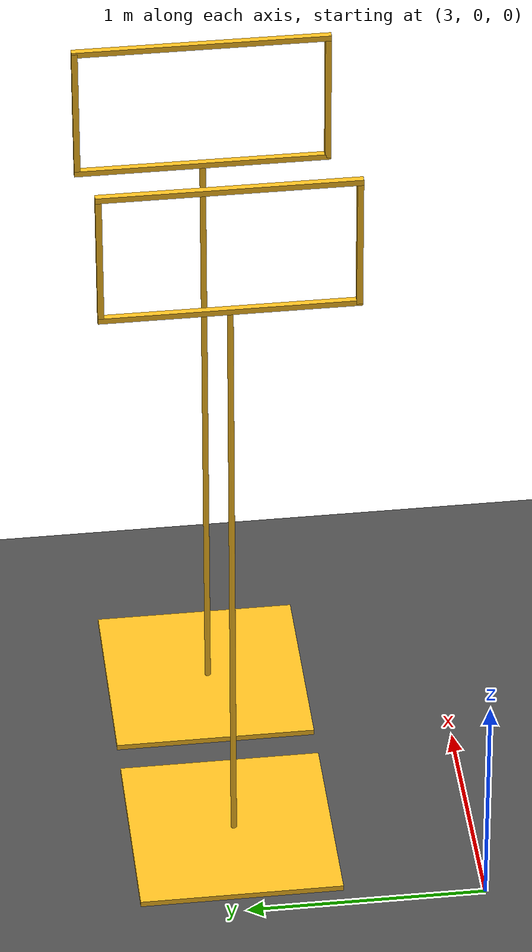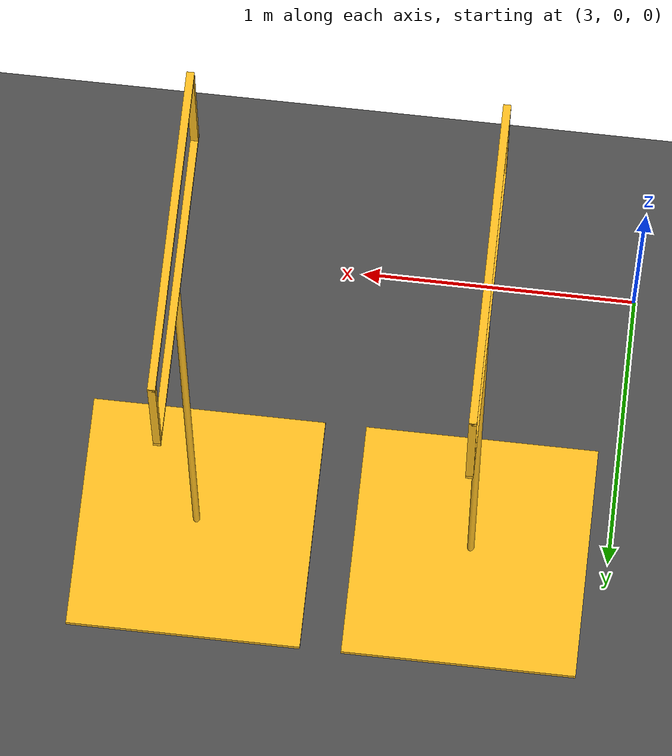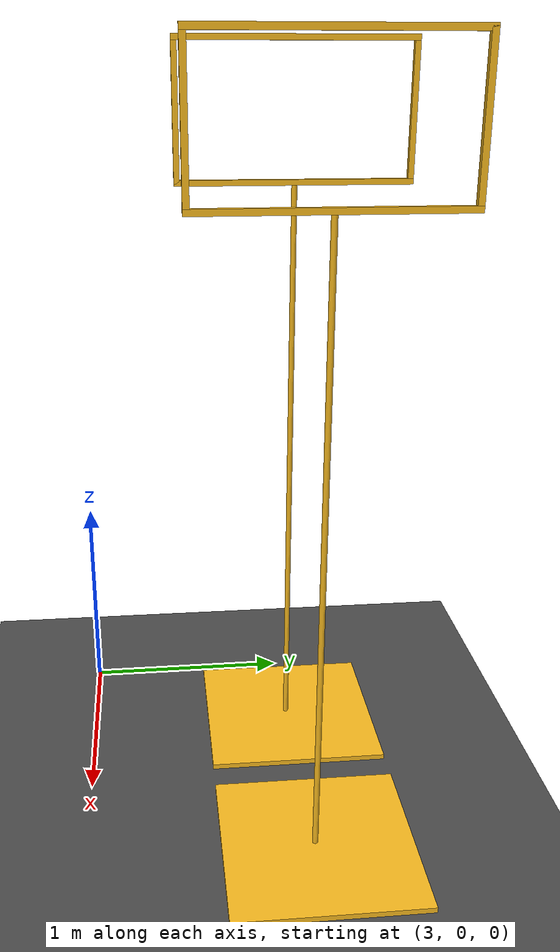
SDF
<sdf version="1.6">
 <world name="default">
  <model name="ground_plane">
   <static>1</static>
   <link name="link">
    <collision name="collision">
     <geometry><plane><normal>0 0 1</normal><size>100 100</size></plane></geometry>
     <surface>
      <contact><collide_bitmask>65535</collide_bitmask></contact>
      <friction><ode><mu>100</mu><mu2>50</mu2></ode></friction>
     </surface>
    </collision>
    <visual name="visual">
     <cast_shadows>0</cast_shadows>
     <geometry><plane><normal>0 0 1</normal><size>100 100</size></plane></geometry>
     <material>
      <script><uri>file://media/materials/scripts/gazebo.material</uri><name>Gazebo/Grey</name></script>
     </material>
    </visual>
   </link>
  </model>
  <model name="asphalt_plane">
   <static>1</static>
   <link name="link">
    <collision name="collision"><geometry><box><size>24.3086 24.3538 0.1</size></box></geometry></collision>
    <visual name="visual">
     <cast_shadows>0</cast_shadows>
     <geometry><box><size>24.3086 24.3538 0.1</size></box></geometry>
     <material>
      <script>
       <uri>model://asphalt_plane/materials/scripts</uri>
       <uri>model://asphalt_plane/materials/textures</uri>
       <name>vrc/asphalt</name>
      </script>
     </material>
    </visual>
   </link>
   <pose>0.83869 0.804741 -0.049 0 -0 0</pose>
  </model>
  <model name="Gate_1">
   <link name="link_2">
    <inertial>
     <mass>1e-08</mass>
     <inertia><ixx>0</ixx><ixy>0</ixy><ixz>0</ixz><iyy>0</iyy><iyz>0</iyz><izz>0</izz></inertia>
     <pose>0 0 0.0125 0 -0 0</pose>
    </inertial>
    <pose>0 -0 0.0125 0 -0 0</pose>
    <visual name="visual">
     <pose>0 0.0125 0 0 -0 0</pose>
     <geometry><box><size>0.85 0.85 0.025</size></box></geometry>
     <material>
      <lighting>1</lighting>
      <script><uri>file://media/materials/scripts/gazebo.material</uri><name>Gazebo/Grey</name></script>
      <shader type="pixel"><normal_map>__default__</normal_map></shader>
      <ambient>0.988 0.741 0.122 1</ambient>
      <diffuse>0.988 0.741 0.122 1</diffuse>
      <specular>0.988 0.741 0.122 1</specular>
      <emissive>0 0 0 1</emissive>
     </material>
    </visual>
    <collision name="collision">
     <pose>0 0.0125 0 0 -0 0</pose>
     <geometry><box><size>0.85 0.85 0.025</size></box></geometry>
     <surface>
      <friction>
       <ode><mu>1</mu><mu2>1</mu2><fdir1>0 0 0</fdir1><slip1>0</slip1><slip2>0</slip2></ode>
       <torsional>
        <coefficient>1</coefficient>
        <patch_radius>0</patch_radius>
        <surface_radius>0</surface_radius>
        <use_patch_radius>1</use_patch_radius>
        <ode><slip>0</slip></ode>
       </torsional>
      </friction>
      <bounce><restitution_coefficient>0</restitution_coefficient><threshold>1e+06</threshold></bounce>
      <contact>
       <collide_without_contact>0</collide_without_contact>
       <collide_without_contact_bitmask>1</collide_without_contact_bitmask>
       <collide_bitmask>1</collide_bitmask>
       <ode>
        <soft_cfm>0</soft_cfm>
        <soft_erp>0.2</soft_erp>
        <kp>1e+13</kp>
        <kd>1</kd>
        <max_vel>0.01</max_vel>
        <min_depth>0</min_depth>
       </ode>
       <bullet>
        <split_impulse>1</split_impulse>
        <split_impulse_penetration_threshold>-0.01</split_impulse_penetration_threshold>
        <soft_cfm>0</soft_cfm>
        <soft_erp>0.2</soft_erp>
        <kp>1e+13</kp>
        <kd>1</kd>
       </bullet>
      </contact>
     </surface>
    </collision>
   </link>
   <link name="link_3">
    <inertial>
     <mass>1.08113e-08</mass>
     <inertia>
      <ixx>6.71432e-09</ixx>
      <ixy>0</ixy>
      <ixz>0</ixz>
      <iyy>6.71432e-09</iyy>
      <iyz>0</iyz>
      <izz>8.44631e-13</izz>
     </inertia>
     <pose>0 0 1.525 0 -0 0</pose>
    </inertial>
    <pose>0 0 1.37026 0 -0 0</pose>
    <visual name="visual">
     <geometry><cylinder><radius>0.0125</radius><length>2.72985</length></cylinder></geometry>
     <material>
      <lighting>1</lighting>
      <script><uri>file://media/materials/scripts/gazebo.material</uri><name>Gazebo/Grey</name></script>
      <shader type="pixel"><normal_map>__default__</normal_map></shader>
      <ambient>0.988 0.741 0.122 1</ambient>
      <diffuse>0.988 0.741 0.122 1</diffuse>
      <specular>0.988 0.741 0.122 1</specular>
      <emissive>0 0 0 1</emissive>
     </material>
    </visual>
    <collision name="collision">
     <geometry><cylinder><radius>0.0125</radius><length>2.72985</length></cylinder></geometry>
     <surface>
      <friction>
       <ode><mu>1</mu><mu2>1</mu2><fdir1>0 0 0</fdir1><slip1>0</slip1><slip2>0</slip2></ode>
       <torsional>
        <coefficient>1</coefficient>
        <patch_radius>0</patch_radius>
        <surface_radius>0</surface_radius>
        <use_patch_radius>1</use_patch_radius>
        <ode><slip>0</slip></ode>
       </torsional>
      </friction>
      <bounce><restitution_coefficient>0</restitution_coefficient><threshold>1e+06</threshold></bounce>
      <contact>
       <collide_without_contact>0</collide_without_contact>
       <collide_without_contact_bitmask>1</collide_without_contact_bitmask>
       <collide_bitmask>1</collide_bitmask>
       <ode>
        <soft_cfm>0</soft_cfm>
        <soft_erp>0.2</soft_erp>
        <kp>1e+13</kp>
        <kd>1</kd>
        <max_vel>0.01</max_vel>
        <min_depth>0</min_depth>
       </ode>
       <bullet>
        <split_impulse>1</split_impulse>
        <split_impulse_penetration_threshold>-0.01</split_impulse_penetration_threshold>
        <soft_cfm>0</soft_cfm>
        <soft_erp>0.2</soft_erp>
        <kp>1e+13</kp>
        <kd>1</kd>
       </bullet>
      </contact>
     </surface>
    </collision>
   </link>
   <link name="link_5">
    <inertial>
     <mass>1e-08</mass>
     <inertia><ixx>0</ixx><ixy>0</ixy><ixz>0</ixz><iyy>0</iyy><iyz>0</iyz><izz>0</izz></inertia>
     <pose>0 0 2.5 0 -0 0</pose>
    </inertial>
    <pose>-0 -0 2.74233 0 -0 0</pose>
    <visual name="visual">
     <geometry><box><size>0.025 1.05 0.025</size></box></geometry>
     <material>
      <lighting>1</lighting>
      <script><uri>file://media/materials/scripts/gazebo.material</uri><name>Gazebo/Grey</name></script>
      <shader type="pixel"><normal_map>__default__</normal_map></shader>
      <ambient>0.988 0.741 0.122 1</ambient>
      <diffuse>0.988 0.741 0.122 1</diffuse>
      <specular>0.988 0.741 0.122 1</specular>
      <emissive>0 0 0 1</emissive>
     </material>
    </visual>
    <collision name="collision">
     <geometry><box><size>0.025 1.05 0.025</size></box></geometry>
     <surface>
      <friction>
       <ode><mu>1</mu><mu2>1</mu2><fdir1>0 0 0</fdir1><slip1>0</slip1><slip2>0</slip2></ode>
       <torsional>
        <coefficient>1</coefficient>
        <patch_radius>0</patch_radius>
        <surface_radius>0</surface_radius>
        <use_patch_radius>1</use_patch_radius>
        <ode><slip>0</slip></ode>
       </torsional>
      </friction>
      <bounce><restitution_coefficient>0</restitution_coefficient><threshold>1e+06</threshold></bounce>
      <contact>
       <collide_without_contact>0</collide_without_contact>
       <collide_without_contact_bitmask>1</collide_without_contact_bitmask>
       <collide_bitmask>1</collide_bitmask>
       <ode>
        <soft_cfm>0</soft_cfm>
        <soft_erp>0.2</soft_erp>
        <kp>1e+13</kp>
        <kd>1</kd>
        <max_vel>0.01</max_vel>
        <min_depth>0</min_depth>
       </ode>
       <bullet>
        <split_impulse>1</split_impulse>
        <split_impulse_penetration_threshold>-0.01</split_impulse_penetration_threshold>
        <soft_cfm>0</soft_cfm>
        <soft_erp>0.2</soft_erp>
        <kp>1e+13</kp>
        <kd>1</kd>
       </bullet>
      </contact>
     </surface>
    </collision>
   </link>
   <link name="link_5_clone">
    <inertial>
     <mass>1e-08</mass>
     <inertia><ixx>0</ixx><ixy>0</ixy><ixz>0</ixz><iyy>0</iyy><iyz>0</iyz><izz>0</izz></inertia>
     <pose>0 0 3.09 0 -0 0</pose>
    </inertial>
    <pose>-0 -0 3.32441 0 -0 0</pose>
    <visual name="visual">
     <geometry><box><size>0.025 1.05 0.025</size></box></geometry>
     <material>
      <lighting>1</lighting>
      <script><uri>file://media/materials/scripts/gazebo.material</uri><name>Gazebo/Grey</name></script>
      <shader type="pixel"><normal_map>__default__</normal_map></shader>
      <ambient>0.988 0.741 0.122 1</ambient>
      <diffuse>0.988 0.741 0.122 1</diffuse>
      <specular>0.988 0.741 0.122 1</specular>
      <emissive>0 0 0 1</emissive>
     </material>
    </visual>
    <collision name="collision">
     <geometry><box><size>0.025 1.05 0.025</size></box></geometry>
     <surface>
      <friction>
       <ode><mu>1</mu><mu2>1</mu2><fdir1>0 0 0</fdir1><slip1>0</slip1><slip2>0</slip2></ode>
       <torsional>
        <coefficient>1</coefficient>
        <patch_radius>0</patch_radius>
        <surface_radius>0</surface_radius>
        <use_patch_radius>1</use_patch_radius>
        <ode><slip>0</slip></ode>
       </torsional>
      </friction>
      <bounce><restitution_coefficient>0</restitution_coefficient><threshold>1e+06</threshold></bounce>
      <contact>
       <collide_without_contact>0</collide_without_contact>
       <collide_without_contact_bitmask>1</collide_without_contact_bitmask>
       <collide_bitmask>1</collide_bitmask>
       <ode>
        <soft_cfm>0</soft_cfm>
        <soft_erp>0.2</soft_erp>
        <kp>1e+13</kp>
        <kd>1</kd>
        <max_vel>0.01</max_vel>
        <min_depth>0</min_depth>
       </ode>
       <bullet>
        <split_impulse>1</split_impulse>
        <split_impulse_penetration_threshold>-0.01</split_impulse_penetration_threshold>
        <soft_cfm>0</soft_cfm>
        <soft_erp>0.2</soft_erp>
        <kp>1e+13</kp>
        <kd>1</kd>
       </bullet>
      </contact>
     </surface>
    </collision>
   </link>
   <link name="link_6">
    <inertial>
     <mass>1e-08</mass>
     <inertia><ixx>0</ixx><ixy>0</ixy><ixz>0</ixz><iyy>0</iyy><iyz>0</iyz><izz>0</izz></inertia>
     <pose>0 0.5125 2.85 0 -0 0</pose>
    </inertial>
    <pose>-0 0.5125 3.04087 0 -0 0</pose>
    <visual name="visual">
     <geometry><box><size>0.025 0.025 0.575</size></box></geometry>
     <material>
      <lighting>1</lighting>
      <script><uri>file://media/materials/scripts/gazebo.material</uri><name>Gazebo/Grey</name></script>
      <shader type="pixel"><normal_map>__default__</normal_map></shader>
      <ambient>0.988 0.741 0.122 1</ambient>
      <diffuse>0.988 0.741 0.122 1</diffuse>
      <specular>0.988 0.741 0.122 1</specular>
      <emissive>0 0 0 1</emissive>
     </material>
    </visual>
    <collision name="collision">
     <geometry><box><size>0.025 0.025 0.575</size></box></geometry>
     <surface>
      <friction>
       <ode><mu>1</mu><mu2>1</mu2><fdir1>0 0 0</fdir1><slip1>0</slip1><slip2>0</slip2></ode>
       <torsional>
        <coefficient>1</coefficient>
        <patch_radius>0</patch_radius>
        <surface_radius>0</surface_radius>
        <use_patch_radius>1</use_patch_radius>
        <ode><slip>0</slip></ode>
       </torsional>
      </friction>
      <bounce><restitution_coefficient>0</restitution_coefficient><threshold>1e+06</threshold></bounce>
      <contact>
       <collide_without_contact>0</collide_without_contact>
       <collide_without_contact_bitmask>1</collide_without_contact_bitmask>
       <collide_bitmask>1</collide_bitmask>
       <ode>
        <soft_cfm>0</soft_cfm>
        <soft_erp>0.2</soft_erp>
        <kp>1e+13</kp>
        <kd>1</kd>
        <max_vel>0.01</max_vel>
        <min_depth>0</min_depth>
       </ode>
       <bullet>
        <split_impulse>1</split_impulse>
        <split_impulse_penetration_threshold>-0.01</split_impulse_penetration_threshold>
        <soft_cfm>0</soft_cfm>
        <soft_erp>0.2</soft_erp>
        <kp>1e+13</kp>
        <kd>1</kd>
       </bullet>
      </contact>
     </surface>
    </collision>
   </link>
   <link name="link_6_clone">
    <inertial>
     <mass>1e-08</mass>
     <inertia><ixx>0</ixx><ixy>0</ixy><ixz>0</ixz><iyy>0</iyy><iyz>0</iyz><izz>0</izz></inertia>
     <pose>0 -0.5125 2.85 0 -0 0</pose>
    </inertial>
    <pose>-0 -0.5125 3.02444 0 -0 0</pose>
    <visual name="visual">
     <geometry><box><size>0.025 0.025 0.575</size></box></geometry>
     <material>
      <lighting>1</lighting>
      <script><uri>file://media/materials/scripts/gazebo.material</uri><name>Gazebo/Grey</name></script>
      <shader type="pixel"><normal_map>__default__</normal_map></shader>
      <ambient>0.988 0.741 0.122 1</ambient>
      <diffuse>0.988 0.741 0.122 1</diffuse>
      <specular>0.988 0.741 0.122 1</specular>
      <emissive>0 0 0 1</emissive>
     </material>
    </visual>
    <collision name="collision">
     <geometry><box><size>0.025 0.025 0.575</size></box></geometry>
     <surface>
      <friction>
       <ode><mu>1</mu><mu2>1</mu2><fdir1>0 0 0</fdir1><slip1>0</slip1><slip2>0</slip2></ode>
       <torsional>
        <coefficient>1</coefficient>
        <patch_radius>0</patch_radius>
        <surface_radius>0</surface_radius>
        <use_patch_radius>1</use_patch_radius>
        <ode><slip>0</slip></ode>
       </torsional>
      </friction>
      <bounce><restitution_coefficient>0</restitution_coefficient><threshold>1e+06</threshold></bounce>
      <contact>
       <collide_without_contact>0</collide_without_contact>
       <collide_without_contact_bitmask>1</collide_without_contact_bitmask>
       <collide_bitmask>1</collide_bitmask>
       <ode>
        <soft_cfm>0</soft_cfm>
        <soft_erp>0.2</soft_erp>
        <kp>1e+13</kp>
        <kd>1</kd>
        <max_vel>0.01</max_vel>
        <min_depth>0</min_depth>
       </ode>
       <bullet>
        <split_impulse>1</split_impulse>
        <split_impulse_penetration_threshold>-0.01</split_impulse_penetration_threshold>
        <soft_cfm>0</soft_cfm>
        <soft_erp>0.2</soft_erp>
        <kp>1e+13</kp>
        <kd>1</kd>
       </bullet>
      </contact>
     </surface>
    </collision>
   </link>
   <joint name="link_2_JOINT_2" type="fixed">
    <parent>link_2</parent>
    <child>link_3</child>
    <physics>
     <ode><limit><cfm>0</cfm><erp>0.2</erp></limit><suspension><cfm>0</cfm><erp>0.2</erp></suspension></ode>
    </physics>
   </joint>
   <joint name="link_3_JOINT_3" type="fixed">
    <parent>link_3</parent>
    <child>link_5</child>
    <physics>
     <ode><limit><cfm>0</cfm><erp>0.2</erp></limit><suspension><cfm>0</cfm><erp>0.2</erp></suspension></ode>
    </physics>
   </joint>
   <joint name="link_5_JOINT_0" type="fixed">
    <parent>link_5</parent>
    <child>link_6_clone</child>
    <physics>
     <ode><limit><cfm>0</cfm><erp>0.2</erp></limit><suspension><cfm>0</cfm><erp>0.2</erp></suspension></ode>
    </physics>
   </joint>
   <joint name="link_5_JOINT_1" type="fixed">
    <parent>link_5</parent>
    <child>link_6</child>
    <physics>
     <ode><limit><cfm>0</cfm><erp>0.2</erp></limit><suspension><cfm>0</cfm><erp>0.2</erp></suspension></ode>
    </physics>
   </joint>
   <joint name="link_6_JOINT_3" type="fixed">
    <parent>link_6</parent>
    <child>link_5_clone</child>
    <physics>
     <ode><limit><cfm>0</cfm><erp>0.2</erp></limit><suspension><cfm>0</cfm><erp>0.2</erp></suspension></ode>
    </physics>
   </joint>
   <joint name="link_6_clone_JOINT_2" type="fixed">
    <parent>link_6_clone</parent>
    <child>link_5_clone</child>
    <physics>
     <ode><limit><cfm>0</cfm><erp>0.2</erp></limit><suspension><cfm>0</cfm><erp>0.2</erp></suspension></ode>
    </physics>
   </joint>
   <static>0</static>
   <pose>3.5 1 0.001002 -1e-06 4e-06 0</pose>
  </model>
  <model name="Gate_2">
   <link name="link_2">
    <inertial>
     <mass>1e-08</mass>
     <inertia><ixx>0</ixx><ixy>0</ixy><ixz>0</ixz><iyy>0</iyy><iyz>0</iyz><izz>0</izz></inertia>
     <pose>0 0 0.0125 0 -0 0</pose>
    </inertial>
    <pose>0 -0 0.0125 0 -0 0</pose>
    <visual name="visual">
     <pose>0 0.0125 0 0 -0 0</pose>
     <geometry><box><size>0.85 0.85 0.025</size></box></geometry>
     <material>
      <lighting>1</lighting>
      <script><uri>file://media/materials/scripts/gazebo.material</uri><name>Gazebo/Grey</name></script>
      <shader type="pixel"><normal_map>__default__</normal_map></shader>
      <ambient>0.988 0.741 0.122 1</ambient>
      <diffuse>0.988 0.741 0.122 1</diffuse>
      <specular>0.988 0.741 0.122 1</specular>
      <emissive>0 0 0 1</emissive>
     </material>
    </visual>
    <collision name="collision">
     <pose>0 0.0125 0 0 -0 0</pose>
     <geometry><box><size>0.85 0.85 0.025</size></box></geometry>
     <surface>
      <friction>
       <ode><mu>1</mu><mu2>1</mu2><fdir1>0 0 0</fdir1><slip1>0</slip1><slip2>0</slip2></ode>
       <torsional>
        <coefficient>1</coefficient>
        <patch_radius>0</patch_radius>
        <surface_radius>0</surface_radius>
        <use_patch_radius>1</use_patch_radius>
        <ode><slip>0</slip></ode>
       </torsional>
      </friction>
      <bounce><restitution_coefficient>0</restitution_coefficient><threshold>1e+06</threshold></bounce>
      <contact>
       <collide_without_contact>0</collide_without_contact>
       <collide_without_contact_bitmask>1</collide_without_contact_bitmask>
       <collide_bitmask>1</collide_bitmask>
       <ode>
        <soft_cfm>0</soft_cfm>
        <soft_erp>0.2</soft_erp>
        <kp>1e+13</kp>
        <kd>1</kd>
        <max_vel>0.01</max_vel>
        <min_depth>0</min_depth>
       </ode>
       <bullet>
        <split_impulse>1</split_impulse>
        <split_impulse_penetration_threshold>-0.01</split_impulse_penetration_threshold>
        <soft_cfm>0</soft_cfm>
        <soft_erp>0.2</soft_erp>
        <kp>1e+13</kp>
        <kd>1</kd>
       </bullet>
      </contact>
     </surface>
    </collision>
   </link>
   <link name="link_3">
    <inertial>
     <mass>1.08113e-08</mass>
     <inertia>
      <ixx>6.71432e-09</ixx>
      <ixy>0</ixy>
      <ixz>0</ixz>
      <iyy>6.71432e-09</iyy>
      <iyz>0</iyz>
      <izz>8.44631e-13</izz>
     </inertia>
     <pose>0 0 1.525 0 -0 0</pose>
    </inertial>
    <pose>0 0 1.37026 0 -0 0</pose>
    <visual name="visual">
     <geometry><cylinder><radius>0.0125</radius><length>2.72985</length></cylinder></geometry>
     <material>
      <lighting>1</lighting>
      <script><uri>file://media/materials/scripts/gazebo.material</uri><name>Gazebo/Grey</name></script>
      <shader type="pixel"><normal_map>__default__</normal_map></shader>
      <ambient>0.988 0.741 0.122 1</ambient>
      <diffuse>0.988 0.741 0.122 1</diffuse>
      <specular>0.988 0.741 0.122 1</specular>
      <emissive>0 0 0 1</emissive>
     </material>
    </visual>
    <collision name="collision">
     <geometry><cylinder><radius>0.0125</radius><length>2.72985</length></cylinder></geometry>
     <surface>
      <friction>
       <ode><mu>1</mu><mu2>1</mu2><fdir1>0 0 0</fdir1><slip1>0</slip1><slip2>0</slip2></ode>
       <torsional>
        <coefficient>1</coefficient>
        <patch_radius>0</patch_radius>
        <surface_radius>0</surface_radius>
        <use_patch_radius>1</use_patch_radius>
        <ode><slip>0</slip></ode>
       </torsional>
      </friction>
      <bounce><restitution_coefficient>0</restitution_coefficient><threshold>1e+06</threshold></bounce>
      <contact>
       <collide_without_contact>0</collide_without_contact>
       <collide_without_contact_bitmask>1</collide_without_contact_bitmask>
       <collide_bitmask>1</collide_bitmask>
       <ode>
        <soft_cfm>0</soft_cfm>
        <soft_erp>0.2</soft_erp>
        <kp>1e+13</kp>
        <kd>1</kd>
        <max_vel>0.01</max_vel>
        <min_depth>0</min_depth>
       </ode>
       <bullet>
        <split_impulse>1</split_impulse>
        <split_impulse_penetration_threshold>-0.01</split_impulse_penetration_threshold>
        <soft_cfm>0</soft_cfm>
        <soft_erp>0.2</soft_erp>
        <kp>1e+13</kp>
        <kd>1</kd>
       </bullet>
      </contact>
     </surface>
    </collision>
   </link>
   <link name="link_5">
    <inertial>
     <mass>1e-08</mass>
     <inertia><ixx>0</ixx><ixy>0</ixy><ixz>0</ixz><iyy>0</iyy><iyz>0</iyz><izz>0</izz></inertia>
     <pose>0 0 2.5 0 -0 0</pose>
    </inertial>
    <pose>-0 -0 2.74233 0 -0 0</pose>
    <visual name="visual">
     <geometry><box><size>0.025 1.05 0.025</size></box></geometry>
     <material>
      <lighting>1</lighting>
      <script><uri>file://media/materials/scripts/gazebo.material</uri><name>Gazebo/Grey</name></script>
      <shader type="pixel"><normal_map>__default__</normal_map></shader>
      <ambient>0.988 0.741 0.122 1</ambient>
      <diffuse>0.988 0.741 0.122 1</diffuse>
      <specular>0.988 0.741 0.122 1</specular>
      <emissive>0 0 0 1</emissive>
     </material>
    </visual>
    <collision name="collision">
     <geometry><box><size>0.025 1.05 0.025</size></box></geometry>
     <surface>
      <friction>
       <ode><mu>1</mu><mu2>1</mu2><fdir1>0 0 0</fdir1><slip1>0</slip1><slip2>0</slip2></ode>
       <torsional>
        <coefficient>1</coefficient>
        <patch_radius>0</patch_radius>
        <surface_radius>0</surface_radius>
        <use_patch_radius>1</use_patch_radius>
        <ode><slip>0</slip></ode>
       </torsional>
      </friction>
      <bounce><restitution_coefficient>0</restitution_coefficient><threshold>1e+06</threshold></bounce>
      <contact>
       <collide_without_contact>0</collide_without_contact>
       <collide_without_contact_bitmask>1</collide_without_contact_bitmask>
       <collide_bitmask>1</collide_bitmask>
       <ode>
        <soft_cfm>0</soft_cfm>
        <soft_erp>0.2</soft_erp>
        <kp>1e+13</kp>
        <kd>1</kd>
        <max_vel>0.01</max_vel>
        <min_depth>0</min_depth>
       </ode>
       <bullet>
        <split_impulse>1</split_impulse>
        <split_impulse_penetration_threshold>-0.01</split_impulse_penetration_threshold>
        <soft_cfm>0</soft_cfm>
        <soft_erp>0.2</soft_erp>
        <kp>1e+13</kp>
        <kd>1</kd>
       </bullet>
      </contact>
     </surface>
    </collision>
   </link>
   <link name="link_5_clone">
    <inertial>
     <mass>1e-08</mass>
     <inertia><ixx>0</ixx><ixy>0</ixy><ixz>0</ixz><iyy>0</iyy><iyz>0</iyz><izz>0</izz></inertia>
     <pose>0 0 3.09 0 -0 0</pose>
    </inertial>
    <pose>-0 -0 3.32441 0 -0 0</pose>
    <visual name="visual">
     <geometry><box><size>0.025 1.05 0.025</size></box></geometry>
     <material>
      <lighting>1</lighting>
      <script><uri>file://media/materials/scripts/gazebo.material</uri><name>Gazebo/Grey</name></script>
      <shader type="pixel"><normal_map>__default__</normal_map></shader>
      <ambient>0.988 0.741 0.122 1</ambient>
      <diffuse>0.988 0.741 0.122 1</diffuse>
      <specular>0.988 0.741 0.122 1</specular>
      <emissive>0 0 0 1</emissive>
     </material>
    </visual>
    <collision name="collision">
     <geometry><box><size>0.025 1.05 0.025</size></box></geometry>
     <surface>
      <friction>
       <ode><mu>1</mu><mu2>1</mu2><fdir1>0 0 0</fdir1><slip1>0</slip1><slip2>0</slip2></ode>
       <torsional>
        <coefficient>1</coefficient>
        <patch_radius>0</patch_radius>
        <surface_radius>0</surface_radius>
        <use_patch_radius>1</use_patch_radius>
        <ode><slip>0</slip></ode>
       </torsional>
      </friction>
      <bounce><restitution_coefficient>0</restitution_coefficient><threshold>1e+06</threshold></bounce>
      <contact>
       <collide_without_contact>0</collide_without_contact>
       <collide_without_contact_bitmask>1</collide_without_contact_bitmask>
       <collide_bitmask>1</collide_bitmask>
       <ode>
        <soft_cfm>0</soft_cfm>
        <soft_erp>0.2</soft_erp>
        <kp>1e+13</kp>
        <kd>1</kd>
        <max_vel>0.01</max_vel>
        <min_depth>0</min_depth>
       </ode>
       <bullet>
        <split_impulse>1</split_impulse>
        <split_impulse_penetration_threshold>-0.01</split_impulse_penetration_threshold>
        <soft_cfm>0</soft_cfm>
        <soft_erp>0.2</soft_erp>
        <kp>1e+13</kp>
        <kd>1</kd>
       </bullet>
      </contact>
     </surface>
    </collision>
   </link>
   <link name="link_6">
    <inertial>
     <mass>1e-08</mass>
     <inertia><ixx>0</ixx><ixy>0</ixy><ixz>0</ixz><iyy>0</iyy><iyz>0</iyz><izz>0</izz></inertia>
     <pose>0 0.5125 2.85 0 -0 0</pose>
    </inertial>
    <pose>-0 0.5125 3.04087 0 -0 0</pose>
    <visual name="visual">
     <geometry><box><size>0.025 0.025 0.575</size></box></geometry>
     <material>
      <lighting>1</lighting>
      <script><uri>file://media/materials/scripts/gazebo.material</uri><name>Gazebo/Grey</name></script>
      <shader type="pixel"><normal_map>__default__</normal_map></shader>
      <ambient>0.988 0.741 0.122 1</ambient>
      <diffuse>0.988 0.741 0.122 1</diffuse>
      <specular>0.988 0.741 0.122 1</specular>
      <emissive>0 0 0 1</emissive>
     </material>
    </visual>
    <collision name="collision">
     <geometry><box><size>0.025 0.025 0.575</size></box></geometry>
     <surface>
      <friction>
       <ode><mu>1</mu><mu2>1</mu2><fdir1>0 0 0</fdir1><slip1>0</slip1><slip2>0</slip2></ode>
       <torsional>
        <coefficient>1</coefficient>
        <patch_radius>0</patch_radius>
        <surface_radius>0</surface_radius>
        <use_patch_radius>1</use_patch_radius>
        <ode><slip>0</slip></ode>
       </torsional>
      </friction>
      <bounce><restitution_coefficient>0</restitution_coefficient><threshold>1e+06</threshold></bounce>
      <contact>
       <collide_without_contact>0</collide_without_contact>
       <collide_without_contact_bitmask>1</collide_without_contact_bitmask>
       <collide_bitmask>1</collide_bitmask>
       <ode>
        <soft_cfm>0</soft_cfm>
        <soft_erp>0.2</soft_erp>
        <kp>1e+13</kp>
        <kd>1</kd>
        <max_vel>0.01</max_vel>
        <min_depth>0</min_depth>
       </ode>
       <bullet>
        <split_impulse>1</split_impulse>
        <split_impulse_penetration_threshold>-0.01</split_impulse_penetration_threshold>
        <soft_cfm>0</soft_cfm>
        <soft_erp>0.2</soft_erp>
        <kp>1e+13</kp>
        <kd>1</kd>
       </bullet>
      </contact>
     </surface>
    </collision>
   </link>
   <link name="link_6_clone">
    <inertial>
     <mass>1e-08</mass>
     <inertia><ixx>0</ixx><ixy>0</ixy><ixz>0</ixz><iyy>0</iyy><iyz>0</iyz><izz>0</izz></inertia>
     <pose>0 -0.5125 2.85 0 -0 0</pose>
    </inertial>
    <pose>-0 -0.5125 3.02444 0 -0 0</pose>
    <visual name="visual">
     <geometry><box><size>0.025 0.025 0.575</size></box></geometry>
     <material>
      <lighting>1</lighting>
      <script><uri>file://media/materials/scripts/gazebo.material</uri><name>Gazebo/Grey</name></script>
      <shader type="pixel"><normal_map>__default__</normal_map></shader>
      <ambient>0.988 0.741 0.122 1</ambient>
      <diffuse>0.988 0.741 0.122 1</diffuse>
      <specular>0.988 0.741 0.122 1</specular>
      <emissive>0 0 0 1</emissive>
     </material>
    </visual>
    <collision name="collision">
     <geometry><box><size>0.025 0.025 0.575</size></box></geometry>
     <surface>
      <friction>
       <ode><mu>1</mu><mu2>1</mu2><fdir1>0 0 0</fdir1><slip1>0</slip1><slip2>0</slip2></ode>
       <torsional>
        <coefficient>1</coefficient>
        <patch_radius>0</patch_radius>
        <surface_radius>0</surface_radius>
        <use_patch_radius>1</use_patch_radius>
        <ode><slip>0</slip></ode>
       </torsional>
      </friction>
      <bounce><restitution_coefficient>0</restitution_coefficient><threshold>1e+06</threshold></bounce>
      <contact>
       <collide_without_contact>0</collide_without_contact>
       <collide_without_contact_bitmask>1</collide_without_contact_bitmask>
       <collide_bitmask>1</collide_bitmask>
       <ode>
        <soft_cfm>0</soft_cfm>
        <soft_erp>0.2</soft_erp>
        <kp>1e+13</kp>
        <kd>1</kd>
        <max_vel>0.01</max_vel>
        <min_depth>0</min_depth>
       </ode>
       <bullet>
        <split_impulse>1</split_impulse>
        <split_impulse_penetration_threshold>-0.01</split_impulse_penetration_threshold>
        <soft_cfm>0</soft_cfm>
        <soft_erp>0.2</soft_erp>
        <kp>1e+13</kp>
        <kd>1</kd>
       </bullet>
      </contact>
     </surface>
    </collision>
   </link>
   <joint name="link_2_JOINT_2" type="fixed">
    <parent>link_2</parent>
    <child>link_3</child>
    <physics>
     <ode><limit><cfm>0</cfm><erp>0.2</erp></limit><suspension><cfm>0</cfm><erp>0.2</erp></suspension></ode>
    </physics>
   </joint>
   <joint name="link_3_JOINT_3" type="fixed">
    <parent>link_3</parent>
    <child>link_5</child>
    <physics>
     <ode><limit><cfm>0</cfm><erp>0.2</erp></limit><suspension><cfm>0</cfm><erp>0.2</erp></suspension></ode>
    </physics>
   </joint>
   <joint name="link_5_JOINT_0" type="fixed">
    <parent>link_5</parent>
    <child>link_6_clone</child>
    <physics>
     <ode><limit><cfm>0</cfm><erp>0.2</erp></limit><suspension><cfm>0</cfm><erp>0.2</erp></suspension></ode>
    </physics>
   </joint>
   <joint name="link_5_JOINT_1" type="fixed">
    <parent>link_5</parent>
    <child>link_6</child>
    <physics>
     <ode><limit><cfm>0</cfm><erp>0.2</erp></limit><suspension><cfm>0</cfm><erp>0.2</erp></suspension></ode>
    </physics>
   </joint>
   <joint name="link_6_JOINT_3" type="fixed">
    <parent>link_6</parent>
    <child>link_5_clone</child>
    <physics>
     <ode><limit><cfm>0</cfm><erp>0.2</erp></limit><suspension><cfm>0</cfm><erp>0.2</erp></suspension></ode>
    </physics>
   </joint>
   <joint name="link_6_clone_JOINT_2" type="fixed">
    <parent>link_6_clone</parent>
    <child>link_5_clone</child>
    <physics>
     <ode><limit><cfm>0</cfm><erp>0.2</erp></limit><suspension><cfm>0</cfm><erp>0.2</erp></suspension></ode>
    </physics>
   </joint>
   <static>0</static>
   <pose>4.5 1 0.000994 -4e-06 2e-06 0</pose>
  </model>
 </world>
</sdf>
